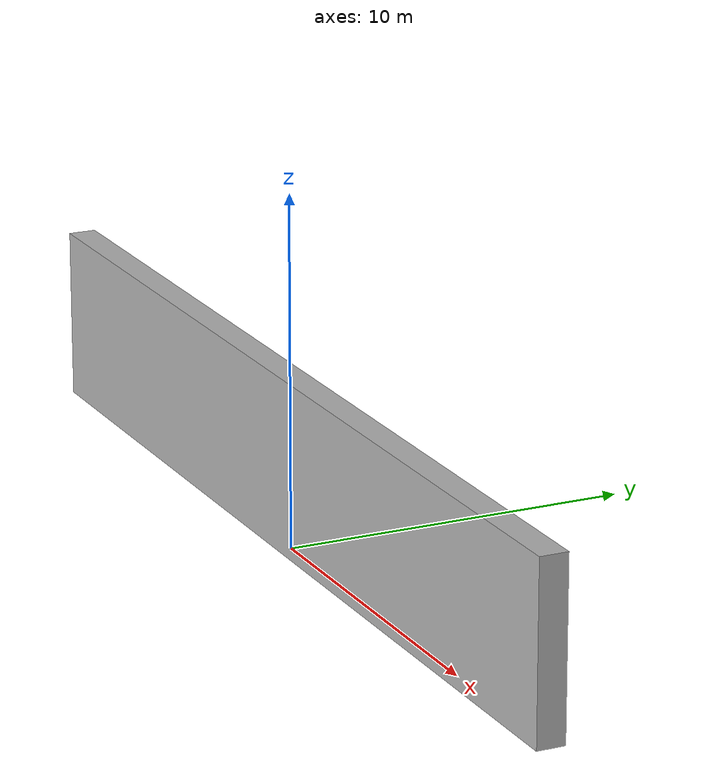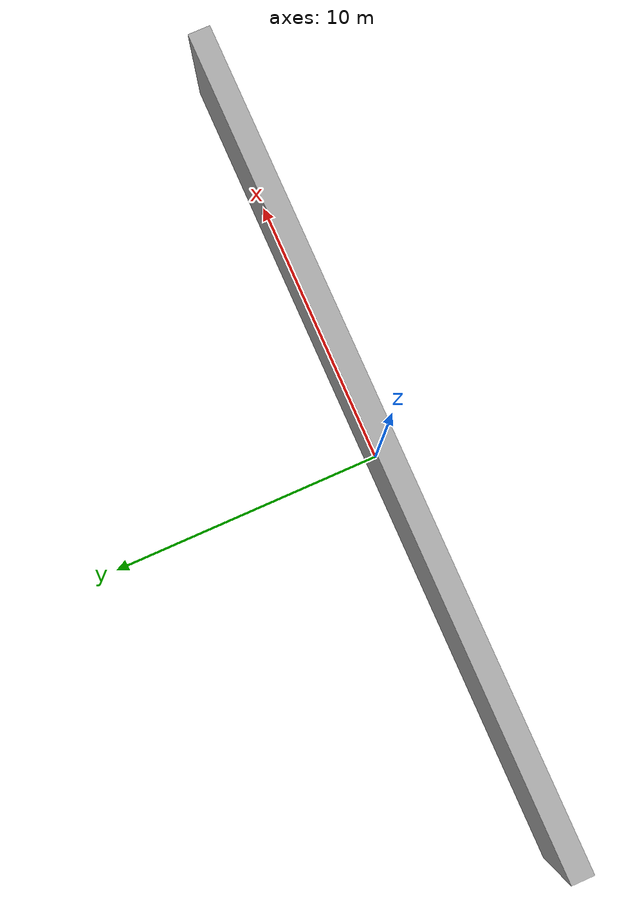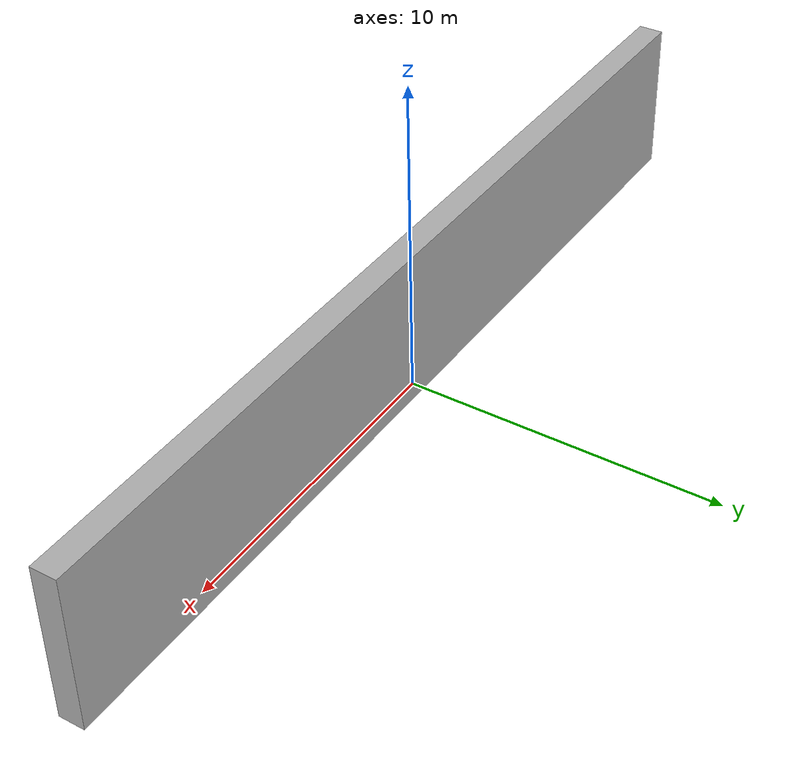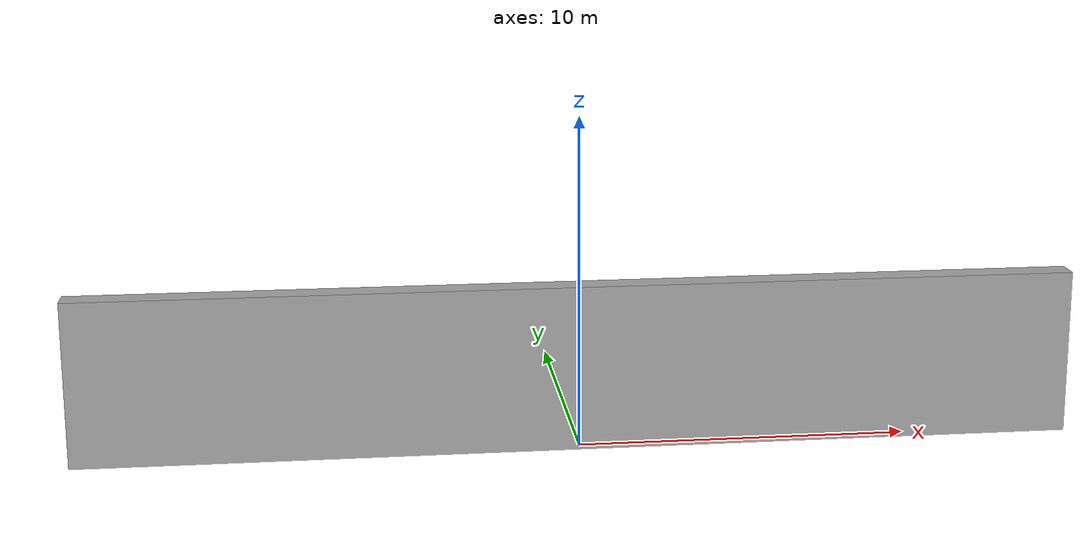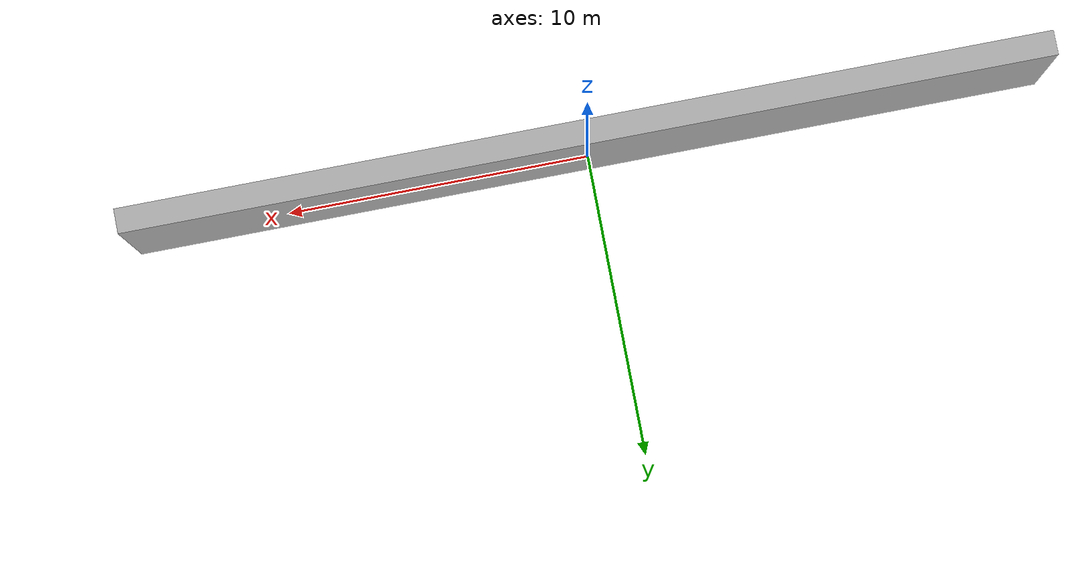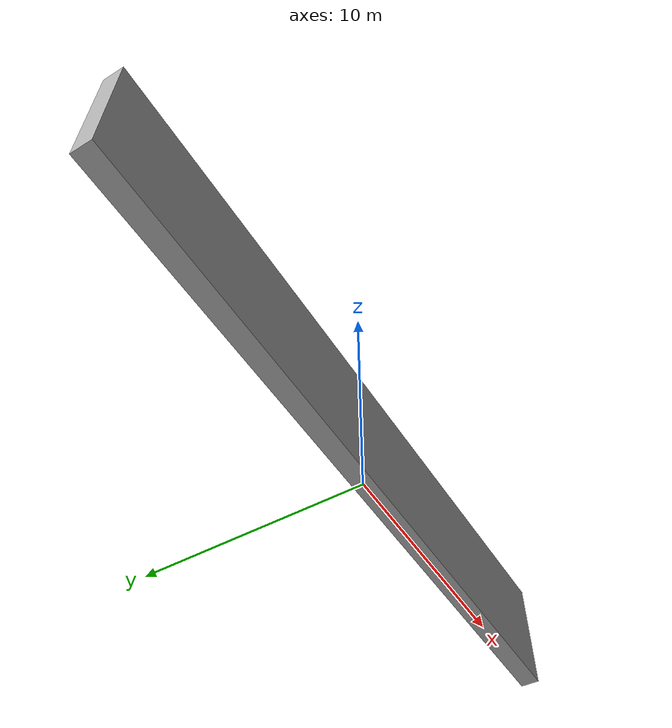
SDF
<?xml version="1.0" ?>
<sdf version="1.5">
  <model name="digital_wall">
    <static>true</static>
    <link name="link">
      <pose>0 0 2.5 0 0 0</pose>
      <collision name="collision">
        <geometry>
          <box>
            <size>30 0.8 5</size>
          </box>
        </geometry>
      </collision>
      <visual name="visual">
        <geometry>
          <box>
            <size>30 0.8 5</size>
          </box>
        </geometry>
        <!-- Portировано под Harmonic: Ogre-скрипт vrc/digital_wall -> PBR. -->
        <material>
          <ambient>0.5 0.5 0.5 1</ambient>
          <diffuse>0.7 0.7 0.7 1</diffuse>
          <specular>0.2 0.2 0.2 1</specular>
          <pbr>
            <metal>
              <albedo_map>materials/textures/digital_wall.jpg</albedo_map>
              <metalness>0.0</metalness>
              <roughness>0.9</roughness>
            </metal>
          </pbr>
        </material>
      </visual>
    </link>
  </model>
</sdf>
